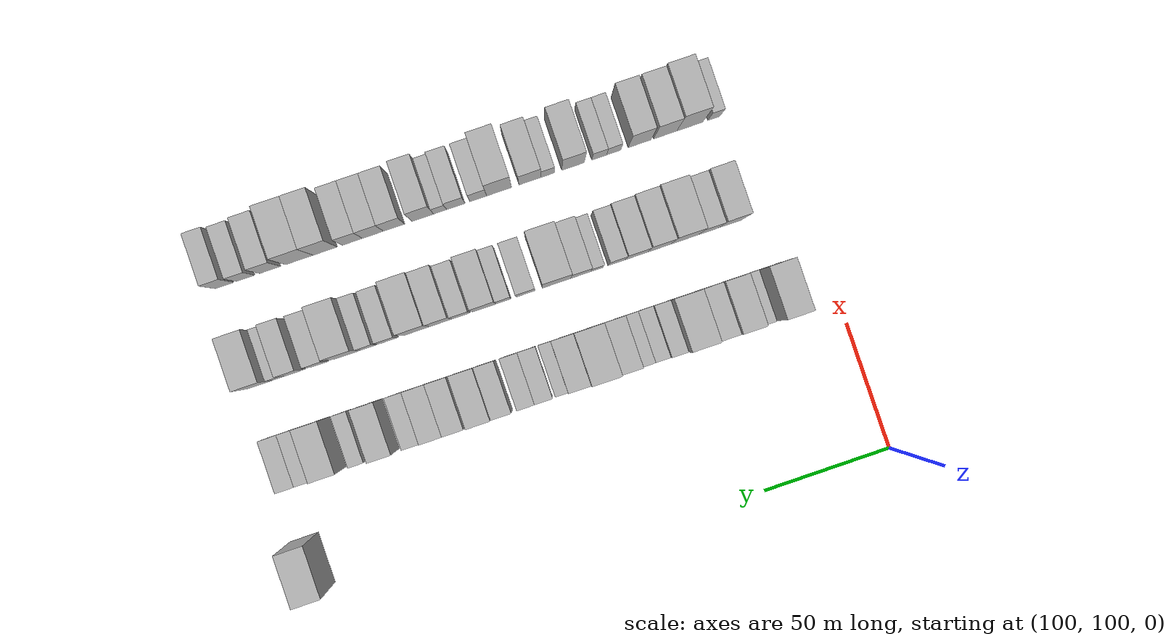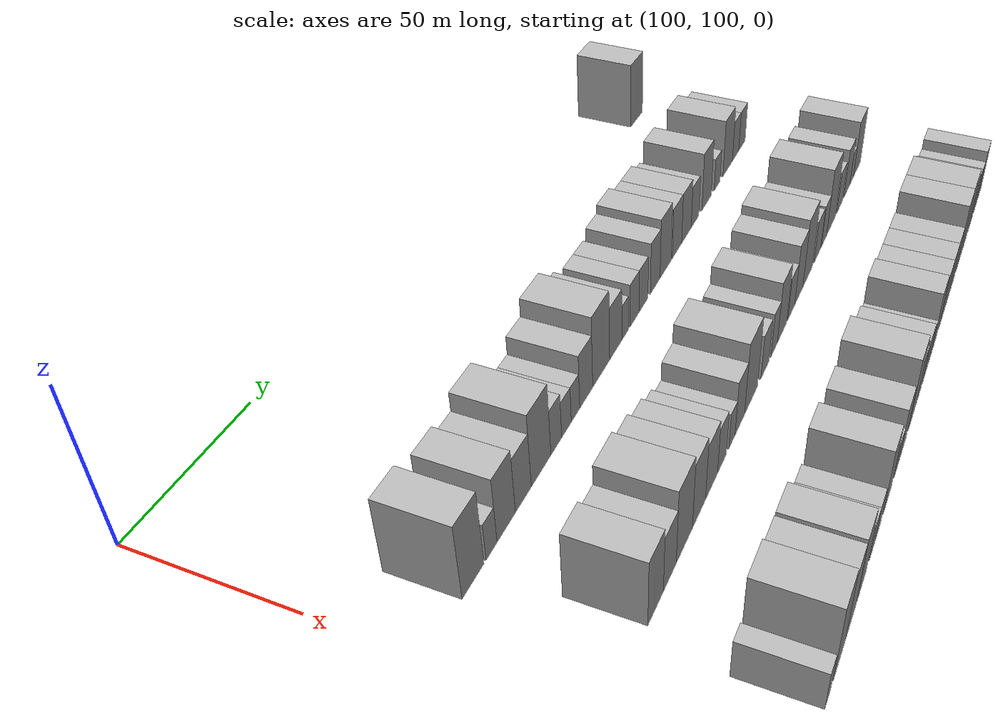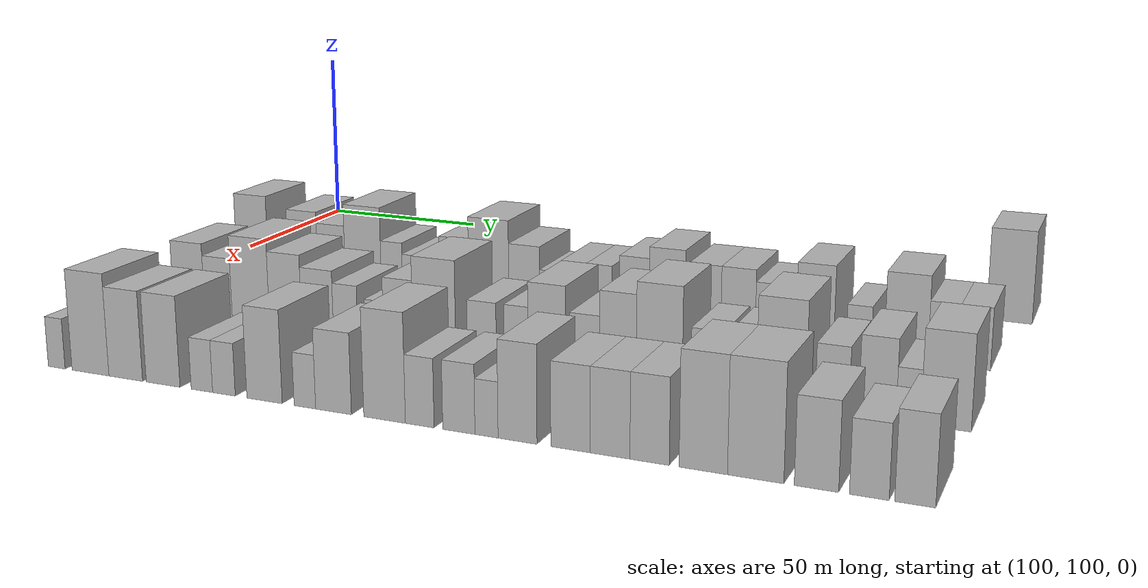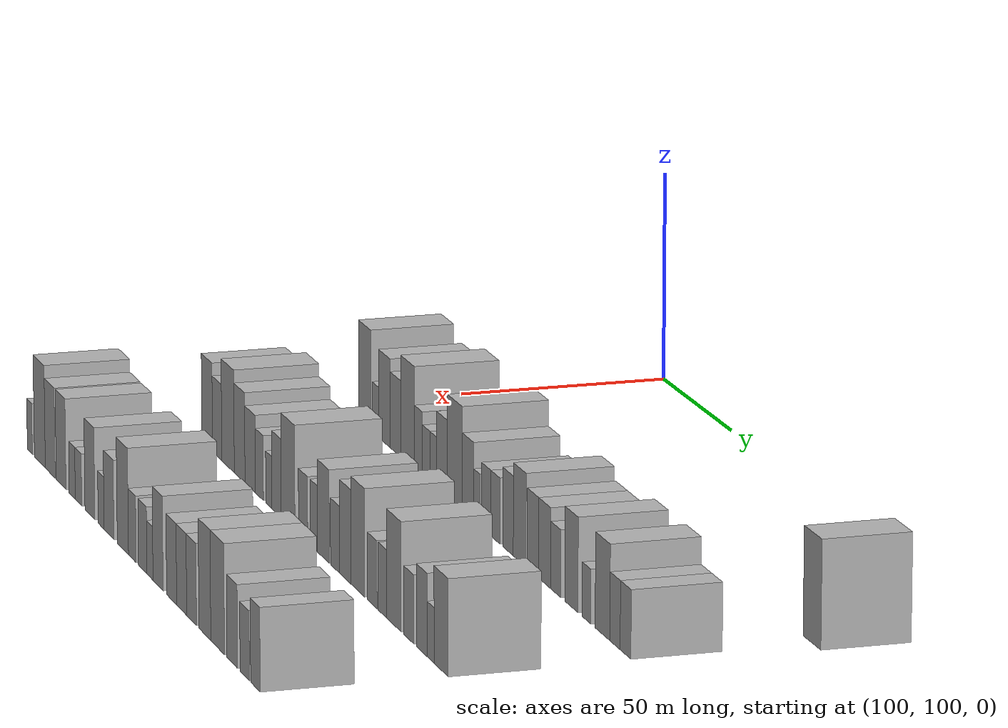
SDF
<sdf version="1.6">
 <world name="default">
  <model name="building_377">
   <static>1</static>
   <pose>130.0000 320.7247 0 0.000000 0.000000 0.000000</pose>
   <link name="link">
    <pose>0 0 12.00 0 0 0</pose>
    <collision name="collision"><geometry><box><size>20.0000 11.2108 24.0000</size></box></geometry></collision>
    <visual name="visual">
     <cast_shadows>0</cast_shadows>
     <geometry><box><size>20.0000 11.2108 24.0000</size></box></geometry>
     <material>
      <script>
       <uri>model://HANNAS_wall/materials/scripts</uri>
       <uri>model://HANNAS_wall/materials/textures</uri>
       <name>vrc/HANNAS_wall</name>
      </script>
     </material>
    </visual>
   </link>
  </model>
  <model name="building_493">
   <static>1</static>
   <pose>170.0000 121.3957 0 0.000000 0.000000 0.000000</pose>
   <link name="link">
    <pose>0 0 12.00 0 0 0</pose>
    <collision name="collision"><geometry><box><size>20.0000 10.3453 24.0000</size></box></geometry></collision>
    <visual name="visual">
     <cast_shadows>0</cast_shadows>
     <geometry><box><size>20.0000 10.3453 24.0000</size></box></geometry>
     <material>
      <script>
       <uri>model://HANNAS_wall/materials/scripts</uri>
       <uri>model://HANNAS_wall/materials/textures</uri>
       <name>vrc/HANNAS_wall</name>
      </script>
     </material>
    </visual>
   </link>
  </model>
  <model name="building_494">
   <static>1</static>
   <pose>170.0000 130.3082 0 0.000000 0.000000 0.000000</pose>
   <link name="link">
    <pose>0 0 6.00 0 0 0</pose>
    <collision name="collision"><geometry><box><size>20.0000 5.4796 12.0000</size></box></geometry></collision>
    <visual name="visual">
     <cast_shadows>0</cast_shadows>
     <geometry><box><size>20.0000 5.4796 12.0000</size></box></geometry>
     <material>
      <script>
       <uri>model://HANNAS_wall/materials/scripts</uri>
       <uri>model://HANNAS_wall/materials/textures</uri>
       <name>vrc/HANNAS_wall</name>
      </script>
     </material>
    </visual>
   </link>
  </model>
  <model name="building_495">
   <static>1</static>
   <pose>170.0000 137.7744 0 0.000000 0.000000 0.000000</pose>
   <link name="link">
    <pose>0 0 10.50 0 0 0</pose>
    <collision name="collision"><geometry><box><size>20.0000 9.4528 21.0000</size></box></geometry></collision>
    <visual name="visual">
     <cast_shadows>0</cast_shadows>
     <geometry><box><size>20.0000 9.4528 21.0000</size></box></geometry>
     <material>
      <script>
       <uri>model://HANNAS_wall/materials/scripts</uri>
       <uri>model://HANNAS_wall/materials/textures</uri>
       <name>vrc/HANNAS_wall</name>
      </script>
     </material>
    </visual>
   </link>
  </model>
  <model name="building_496">
   <static>1</static>
   <pose>170.0000 146.8106 0 0.000000 0.000000 0.000000</pose>
   <link name="link">
    <pose>0 0 9.00 0 0 0</pose>
    <collision name="collision"><geometry><box><size>20.0000 8.6198 18.0000</size></box></geometry></collision>
    <visual name="visual">
     <cast_shadows>0</cast_shadows>
     <geometry><box><size>20.0000 8.6198 18.0000</size></box></geometry>
     <material>
      <script>
       <uri>model://HANNAS_wall/materials/scripts</uri>
       <uri>model://HANNAS_wall/materials/textures</uri>
       <name>vrc/HANNAS_wall</name>
      </script>
     </material>
    </visual>
   </link>
  </model>
  <model name="building_497">
   <static>1</static>
   <pose>170.0000 156.6795 0 0.000000 0.000000 0.000000</pose>
   <link name="link">
    <pose>0 0 12.00 0 0 0</pose>
    <collision name="collision"><geometry><box><size>20.0000 11.1180 24.0000</size></box></geometry></collision>
    <visual name="visual">
     <cast_shadows>0</cast_shadows>
     <geometry><box><size>20.0000 11.1180 24.0000</size></box></geometry>
     <material>
      <script>
       <uri>model://HANNAS_wall/materials/scripts</uri>
       <uri>model://HANNAS_wall/materials/textures</uri>
       <name>vrc/HANNAS_wall</name>
      </script>
     </material>
    </visual>
   </link>
  </model>
  <model name="building_498">
   <static>1</static>
   <pose>170.0000 165.4487 0 0.000000 0.000000 0.000000</pose>
   <link name="link">
    <pose>0 0 7.50 0 0 0</pose>
    <collision name="collision"><geometry><box><size>20.0000 6.4203 15.0000</size></box></geometry></collision>
    <visual name="visual">
     <cast_shadows>0</cast_shadows>
     <geometry><box><size>20.0000 6.4203 15.0000</size></box></geometry>
     <material>
      <script>
       <uri>model://HANNAS_wall/materials/scripts</uri>
       <uri>model://HANNAS_wall/materials/textures</uri>
       <name>vrc/HANNAS_wall</name>
      </script>
     </material>
    </visual>
   </link>
  </model>
  <model name="building_499">
   <static>1</static>
   <pose>170.0000 171.6054 0 0.000000 0.000000 0.000000</pose>
   <link name="link">
    <pose>0 0 6.00 0 0 0</pose>
    <collision name="collision"><geometry><box><size>20.0000 5.8931 12.0000</size></box></geometry></collision>
    <visual name="visual">
     <cast_shadows>0</cast_shadows>
     <geometry><box><size>20.0000 5.8931 12.0000</size></box></geometry>
     <material>
      <script>
       <uri>model://HANNAS_wall/materials/scripts</uri>
       <uri>model://HANNAS_wall/materials/textures</uri>
       <name>vrc/HANNAS_wall</name>
      </script>
     </material>
    </visual>
   </link>
  </model>
  <model name="building_500">
   <static>1</static>
   <pose>170.0000 177.2197 0 0.000000 0.000000 0.000000</pose>
   <link name="link">
    <pose>0 0 6.00 0 0 0</pose>
    <collision name="collision"><geometry><box><size>20.0000 5.3356 12.0000</size></box></geometry></collision>
    <visual name="visual">
     <cast_shadows>0</cast_shadows>
     <geometry><box><size>20.0000 5.3356 12.0000</size></box></geometry>
     <material>
      <script>
       <uri>model://HANNAS_wall/materials/scripts</uri>
       <uri>model://HANNAS_wall/materials/textures</uri>
       <name>vrc/HANNAS_wall</name>
      </script>
     </material>
    </visual>
   </link>
  </model>
  <model name="building_501">
   <static>1</static>
   <pose>170.0000 184.1229 0 0.000000 0.000000 0.000000</pose>
   <link name="link">
    <pose>0 0 9.00 0 0 0</pose>
    <collision name="collision"><geometry><box><size>20.0000 8.4709 18.0000</size></box></geometry></collision>
    <visual name="visual">
     <cast_shadows>0</cast_shadows>
     <geometry><box><size>20.0000 8.4709 18.0000</size></box></geometry>
     <material>
      <script>
       <uri>model://HANNAS_wall/materials/scripts</uri>
       <uri>model://HANNAS_wall/materials/textures</uri>
       <name>vrc/HANNAS_wall</name>
      </script>
     </material>
    </visual>
   </link>
  </model>
  <model name="building_502">
   <static>1</static>
   <pose>170.0000 194.1179 0 0.000000 0.000000 0.000000</pose>
   <link name="link">
    <pose>0 0 12.00 0 0 0</pose>
    <collision name="collision"><geometry><box><size>20.0000 11.5191 24.0000</size></box></geometry></collision>
    <visual name="visual">
     <cast_shadows>0</cast_shadows>
     <geometry><box><size>20.0000 11.5191 24.0000</size></box></geometry>
     <material>
      <script>
       <uri>model://HANNAS_wall/materials/scripts</uri>
       <uri>model://HANNAS_wall/materials/textures</uri>
       <name>vrc/HANNAS_wall</name>
      </script>
     </material>
    </visual>
   </link>
  </model>
  <model name="building_503">
   <static>1</static>
   <pose>170.0000 204.2485 0 0.000000 0.000000 0.000000</pose>
   <link name="link">
    <pose>0 0 9.00 0 0 0</pose>
    <collision name="collision"><geometry><box><size>20.0000 8.7421 18.0000</size></box></geometry></collision>
    <visual name="visual">
     <cast_shadows>0</cast_shadows>
     <geometry><box><size>20.0000 8.7421 18.0000</size></box></geometry>
     <material>
      <script>
       <uri>model://HANNAS_wall/materials/scripts</uri>
       <uri>model://HANNAS_wall/materials/textures</uri>
       <name>vrc/HANNAS_wall</name>
      </script>
     </material>
    </visual>
   </link>
  </model>
  <model name="building_504">
   <static>1</static>
   <pose>170.0000 211.1005 0 0.000000 0.000000 0.000000</pose>
   <link name="link">
    <pose>0 0 6.00 0 0 0</pose>
    <collision name="collision"><geometry><box><size>20.0000 4.9620 12.0000</size></box></geometry></collision>
    <visual name="visual">
     <cast_shadows>0</cast_shadows>
     <geometry><box><size>20.0000 4.9620 12.0000</size></box></geometry>
     <material>
      <script>
       <uri>model://HANNAS_wall/materials/scripts</uri>
       <uri>model://HANNAS_wall/materials/textures</uri>
       <name>vrc/HANNAS_wall</name>
      </script>
     </material>
    </visual>
   </link>
  </model>
  <model name="building_505">
   <static>1</static>
   <pose>170.0000 218.0804 0 0.000000 0.000000 0.000000</pose>
   <link name="link">
    <pose>0 0 7.50 0 0 0</pose>
    <collision name="collision"><geometry><box><size>20.0000 6.9977 15.0000</size></box></geometry></collision>
    <visual name="visual">
     <cast_shadows>0</cast_shadows>
     <geometry><box><size>20.0000 6.9977 15.0000</size></box></geometry>
     <material>
      <script>
       <uri>model://HANNAS_wall/materials/scripts</uri>
       <uri>model://HANNAS_wall/materials/textures</uri>
       <name>vrc/HANNAS_wall</name>
      </script>
     </material>
    </visual>
   </link>
  </model>
  <model name="building_506">
   <static>1</static>
   <pose>170.0000 225.0211 0 0.000000 0.000000 0.000000</pose>
   <link name="link">
    <pose>0 0 7.50 0 0 0</pose>
    <collision name="collision"><geometry><box><size>20.0000 6.8839 15.0000</size></box></geometry></collision>
    <visual name="visual">
     <cast_shadows>0</cast_shadows>
     <geometry><box><size>20.0000 6.8839 15.0000</size></box></geometry>
     <material>
      <script>
       <uri>model://HANNAS_wall/materials/scripts</uri>
       <uri>model://HANNAS_wall/materials/textures</uri>
       <name>vrc/HANNAS_wall</name>
      </script>
     </material>
    </visual>
   </link>
  </model>
  <model name="building_507">
   <static>1</static>
   <pose>170.0000 234.3957 0 0.000000 0.000000 0.000000</pose>
   <link name="link">
    <pose>0 0 9.00 0 0 0</pose>
    <collision name="collision"><geometry><box><size>20.0000 7.8653 18.0000</size></box></geometry></collision>
    <visual name="visual">
     <cast_shadows>0</cast_shadows>
     <geometry><box><size>20.0000 7.8653 18.0000</size></box></geometry>
     <material>
      <script>
       <uri>model://HANNAS_wall/materials/scripts</uri>
       <uri>model://HANNAS_wall/materials/textures</uri>
       <name>vrc/HANNAS_wall</name>
      </script>
     </material>
    </visual>
   </link>
  </model>
  <model name="building_508">
   <static>1</static>
   <pose>170.0000 243.0102 0 0.000000 0.000000 0.000000</pose>
   <link name="link">
    <pose>0 0 10.50 0 0 0</pose>
    <collision name="collision"><geometry><box><size>20.0000 9.3636 21.0000</size></box></geometry></collision>
    <visual name="visual">
     <cast_shadows>0</cast_shadows>
     <geometry><box><size>20.0000 9.3636 21.0000</size></box></geometry>
     <material>
      <script>
       <uri>model://HANNAS_wall/materials/scripts</uri>
       <uri>model://HANNAS_wall/materials/textures</uri>
       <name>vrc/HANNAS_wall</name>
      </script>
     </material>
    </visual>
   </link>
  </model>
  <model name="building_509">
   <static>1</static>
   <pose>170.0000 252.8334 0 0.000000 0.000000 0.000000</pose>
   <link name="link">
    <pose>0 0 9.00 0 0 0</pose>
    <collision name="collision"><geometry><box><size>20.0000 8.2827 18.0000</size></box></geometry></collision>
    <visual name="visual">
     <cast_shadows>0</cast_shadows>
     <geometry><box><size>20.0000 8.2827 18.0000</size></box></geometry>
     <material>
      <script>
       <uri>model://HANNAS_wall/materials/scripts</uri>
       <uri>model://HANNAS_wall/materials/textures</uri>
       <name>vrc/HANNAS_wall</name>
      </script>
     </material>
    </visual>
   </link>
  </model>
  <model name="building_510">
   <static>1</static>
   <pose>170.0000 261.3285 0 0.000000 0.000000 0.000000</pose>
   <link name="link">
    <pose>0 0 9.00 0 0 0</pose>
    <collision name="collision"><geometry><box><size>20.0000 8.7075 18.0000</size></box></geometry></collision>
    <visual name="visual">
     <cast_shadows>0</cast_shadows>
     <geometry><box><size>20.0000 8.7075 18.0000</size></box></geometry>
     <material>
      <script>
       <uri>model://HANNAS_wall/materials/scripts</uri>
       <uri>model://HANNAS_wall/materials/textures</uri>
       <name>vrc/HANNAS_wall</name>
      </script>
     </material>
    </visual>
   </link>
  </model>
  <model name="building_511">
   <static>1</static>
   <pose>170.0000 269.2402 0 0.000000 0.000000 0.000000</pose>
   <link name="link">
    <pose>0 0 7.50 0 0 0</pose>
    <collision name="collision"><geometry><box><size>20.0000 7.1160 15.0000</size></box></geometry></collision>
    <visual name="visual">
     <cast_shadows>0</cast_shadows>
     <geometry><box><size>20.0000 7.1160 15.0000</size></box></geometry>
     <material>
      <script>
       <uri>model://HANNAS_wall/materials/scripts</uri>
       <uri>model://HANNAS_wall/materials/textures</uri>
       <name>vrc/HANNAS_wall</name>
      </script>
     </material>
    </visual>
   </link>
  </model>
  <model name="building_512">
   <static>1</static>
   <pose>170.0000 280.3870 0 0.000000 0.000000 0.000000</pose>
   <link name="link">
    <pose>0 0 10.50 0 0 0</pose>
    <collision name="collision"><geometry><box><size>20.0000 9.1775 21.0000</size></box></geometry></collision>
    <visual name="visual">
     <cast_shadows>0</cast_shadows>
     <geometry><box><size>20.0000 9.1775 21.0000</size></box></geometry>
     <material>
      <script>
       <uri>model://HANNAS_wall/materials/scripts</uri>
       <uri>model://HANNAS_wall/materials/textures</uri>
       <name>vrc/HANNAS_wall</name>
      </script>
     </material>
    </visual>
   </link>
  </model>
  <model name="building_513">
   <static>1</static>
   <pose>170.0000 290.9693 0 0.000000 0.000000 0.000000</pose>
   <link name="link">
    <pose>0 0 6.00 0 0 0</pose>
    <collision name="collision"><geometry><box><size>20.0000 5.9873 12.0000</size></box></geometry></collision>
    <visual name="visual">
     <cast_shadows>0</cast_shadows>
     <geometry><box><size>20.0000 5.9873 12.0000</size></box></geometry>
     <material>
      <script>
       <uri>model://HANNAS_wall/materials/scripts</uri>
       <uri>model://HANNAS_wall/materials/textures</uri>
       <name>vrc/HANNAS_wall</name>
      </script>
     </material>
    </visual>
   </link>
  </model>
  <model name="building_514">
   <static>1</static>
   <pose>170.0000 302.0450 0 0.000000 0.000000 0.000000</pose>
   <link name="link">
    <pose>0 0 10.50 0 0 0</pose>
    <collision name="collision"><geometry><box><size>20.0000 10.1641 21.0000</size></box></geometry></collision>
    <visual name="visual">
     <cast_shadows>0</cast_shadows>
     <geometry><box><size>20.0000 10.1641 21.0000</size></box></geometry>
     <material>
      <script>
       <uri>model://HANNAS_wall/materials/scripts</uri>
       <uri>model://HANNAS_wall/materials/textures</uri>
       <name>vrc/HANNAS_wall</name>
      </script>
     </material>
    </visual>
   </link>
  </model>
  <model name="building_515">
   <static>1</static>
   <pose>170.0000 310.6163 0 0.000000 0.000000 0.000000</pose>
   <link name="link">
    <pose>0 0 7.50 0 0 0</pose>
    <collision name="collision"><geometry><box><size>20.0000 6.9785 15.0000</size></box></geometry></collision>
    <visual name="visual">
     <cast_shadows>0</cast_shadows>
     <geometry><box><size>20.0000 6.9785 15.0000</size></box></geometry>
     <material>
      <script>
       <uri>model://HANNAS_wall/materials/scripts</uri>
       <uri>model://HANNAS_wall/materials/textures</uri>
       <name>vrc/HANNAS_wall</name>
      </script>
     </material>
    </visual>
   </link>
  </model>
  <model name="building_516">
   <static>1</static>
   <pose>170.0000 317.7378 0 0.000000 0.000000 0.000000</pose>
   <link name="link">
    <pose>0 0 7.50 0 0 0</pose>
    <collision name="collision"><geometry><box><size>20.0000 7.2645 15.0000</size></box></geometry></collision>
    <visual name="visual">
     <cast_shadows>0</cast_shadows>
     <geometry><box><size>20.0000 7.2645 15.0000</size></box></geometry>
     <material>
      <script>
       <uri>model://HANNAS_wall/materials/scripts</uri>
       <uri>model://HANNAS_wall/materials/textures</uri>
       <name>vrc/HANNAS_wall</name>
      </script>
     </material>
    </visual>
   </link>
  </model>
  <model name="building_630">
   <static>1</static>
   <pose>210.0000 129.7994 0 0.000000 0.000000 0.000000</pose>
   <link name="link">
    <pose>0 0 10.50 0 0 0</pose>
    <collision name="collision"><geometry><box><size>20.0000 9.4285 21.0000</size></box></geometry></collision>
    <visual name="visual">
     <cast_shadows>0</cast_shadows>
     <geometry><box><size>20.0000 9.4285 21.0000</size></box></geometry>
     <material>
      <script>
       <uri>model://HANNAS_wall/materials/scripts</uri>
       <uri>model://HANNAS_wall/materials/textures</uri>
       <name>vrc/HANNAS_wall</name>
      </script>
     </material>
    </visual>
   </link>
  </model>
  <model name="building_631">
   <static>1</static>
   <pose>210.0000 138.6026 0 0.000000 0.000000 0.000000</pose>
   <link name="link">
    <pose>0 0 9.00 0 0 0</pose>
    <collision name="collision"><geometry><box><size>20.0000 8.1780 18.0000</size></box></geometry></collision>
    <visual name="visual">
     <cast_shadows>0</cast_shadows>
     <geometry><box><size>20.0000 8.1780 18.0000</size></box></geometry>
     <material>
      <script>
       <uri>model://HANNAS_wall/materials/scripts</uri>
       <uri>model://HANNAS_wall/materials/textures</uri>
       <name>vrc/HANNAS_wall</name>
      </script>
     </material>
    </visual>
   </link>
  </model>
  <model name="building_632">
   <static>1</static>
   <pose>210.0000 148.1608 0 0.000000 0.000000 0.000000</pose>
   <link name="link">
    <pose>0 0 12.00 0 0 0</pose>
    <collision name="collision"><geometry><box><size>20.0000 10.9383 24.0000</size></box></geometry></collision>
    <visual name="visual">
     <cast_shadows>0</cast_shadows>
     <geometry><box><size>20.0000 10.9383 24.0000</size></box></geometry>
     <material>
      <script>
       <uri>model://HANNAS_wall/materials/scripts</uri>
       <uri>model://HANNAS_wall/materials/textures</uri>
       <name>vrc/HANNAS_wall</name>
      </script>
     </material>
    </visual>
   </link>
  </model>
  <model name="building_633">
   <static>1</static>
   <pose>210.0000 158.2588 0 0.000000 0.000000 0.000000</pose>
   <link name="link">
    <pose>0 0 10.50 0 0 0</pose>
    <collision name="collision"><geometry><box><size>20.0000 9.2578 21.0000</size></box></geometry></collision>
    <visual name="visual">
     <cast_shadows>0</cast_shadows>
     <geometry><box><size>20.0000 9.2578 21.0000</size></box></geometry>
     <material>
      <script>
       <uri>model://HANNAS_wall/materials/scripts</uri>
       <uri>model://HANNAS_wall/materials/textures</uri>
       <name>vrc/HANNAS_wall</name>
      </script>
     </material>
    </visual>
   </link>
  </model>
  <model name="building_634">
   <static>1</static>
   <pose>210.0000 167.3702 0 0.000000 0.000000 0.000000</pose>
   <link name="link">
    <pose>0 0 9.00 0 0 0</pose>
    <collision name="collision"><geometry><box><size>20.0000 8.9650 18.0000</size></box></geometry></collision>
    <visual name="visual">
     <cast_shadows>0</cast_shadows>
     <geometry><box><size>20.0000 8.9650 18.0000</size></box></geometry>
     <material>
      <script>
       <uri>model://HANNAS_wall/materials/scripts</uri>
       <uri>model://HANNAS_wall/materials/textures</uri>
       <name>vrc/HANNAS_wall</name>
      </script>
     </material>
    </visual>
   </link>
  </model>
  <model name="building_635">
   <static>1</static>
   <pose>210.0000 175.2345 0 0.000000 0.000000 0.000000</pose>
   <link name="link">
    <pose>0 0 7.50 0 0 0</pose>
    <collision name="collision"><geometry><box><size>20.0000 6.7636 15.0000</size></box></geometry></collision>
    <visual name="visual">
     <cast_shadows>0</cast_shadows>
     <geometry><box><size>20.0000 6.7636 15.0000</size></box></geometry>
     <material>
      <script>
       <uri>model://HANNAS_wall/materials/scripts</uri>
       <uri>model://HANNAS_wall/materials/textures</uri>
       <name>vrc/HANNAS_wall</name>
      </script>
     </material>
    </visual>
   </link>
  </model>
  <model name="building_636">
   <static>1</static>
   <pose>210.0000 183.1445 0 0.000000 0.000000 0.000000</pose>
   <link name="link">
    <pose>0 0 6.00 0 0 0</pose>
    <collision name="collision"><geometry><box><size>20.0000 5.0562 12.0000</size></box></geometry></collision>
    <visual name="visual">
     <cast_shadows>0</cast_shadows>
     <geometry><box><size>20.0000 5.0562 12.0000</size></box></geometry>
     <material>
      <script>
       <uri>model://HANNAS_wall/materials/scripts</uri>
       <uri>model://HANNAS_wall/materials/textures</uri>
       <name>vrc/HANNAS_wall</name>
      </script>
     </material>
    </visual>
   </link>
  </model>
  <model name="building_637">
   <static>1</static>
   <pose>210.0000 189.6236 0 0.000000 0.000000 0.000000</pose>
   <link name="link">
    <pose>0 0 9.00 0 0 0</pose>
    <collision name="collision"><geometry><box><size>20.0000 7.9020 18.0000</size></box></geometry></collision>
    <visual name="visual">
     <cast_shadows>0</cast_shadows>
     <geometry><box><size>20.0000 7.9020 18.0000</size></box></geometry>
     <material>
      <script>
       <uri>model://HANNAS_wall/materials/scripts</uri>
       <uri>model://HANNAS_wall/materials/textures</uri>
       <name>vrc/HANNAS_wall</name>
      </script>
     </material>
    </visual>
   </link>
  </model>
  <model name="building_638">
   <static>1</static>
   <pose>210.0000 199.2311 0 0.000000 0.000000 0.000000</pose>
   <link name="link">
    <pose>0 0 12.00 0 0 0</pose>
    <collision name="collision"><geometry><box><size>20.0000 11.3130 24.0000</size></box></geometry></collision>
    <visual name="visual">
     <cast_shadows>0</cast_shadows>
     <geometry><box><size>20.0000 11.3130 24.0000</size></box></geometry>
     <material>
      <script>
       <uri>model://HANNAS_wall/materials/scripts</uri>
       <uri>model://HANNAS_wall/materials/textures</uri>
       <name>vrc/HANNAS_wall</name>
      </script>
     </material>
    </visual>
   </link>
  </model>
  <model name="building_639">
   <static>1</static>
   <pose>210.0000 211.6267 0 0.000000 0.000000 0.000000</pose>
   <link name="link">
    <pose>0 0 7.50 0 0 0</pose>
    <collision name="collision"><geometry><box><size>20.0000 7.4781 15.0000</size></box></geometry></collision>
    <visual name="visual">
     <cast_shadows>0</cast_shadows>
     <geometry><box><size>20.0000 7.4781 15.0000</size></box></geometry>
     <material>
      <script>
       <uri>model://HANNAS_wall/materials/scripts</uri>
       <uri>model://HANNAS_wall/materials/textures</uri>
       <name>vrc/HANNAS_wall</name>
      </script>
     </material>
    </visual>
   </link>
  </model>
  <model name="building_640">
   <static>1</static>
   <pose>210.0000 220.3693 0 0.000000 0.000000 0.000000</pose>
   <link name="link">
    <pose>0 0 7.50 0 0 0</pose>
    <collision name="collision"><geometry><box><size>20.0000 6.0071 15.0000</size></box></geometry></collision>
    <visual name="visual">
     <cast_shadows>0</cast_shadows>
     <geometry><box><size>20.0000 6.0071 15.0000</size></box></geometry>
     <material>
      <script>
       <uri>model://HANNAS_wall/materials/scripts</uri>
       <uri>model://HANNAS_wall/materials/textures</uri>
       <name>vrc/HANNAS_wall</name>
      </script>
     </material>
    </visual>
   </link>
  </model>
  <model name="building_641">
   <static>1</static>
   <pose>210.0000 228.0496 0 0.000000 0.000000 0.000000</pose>
   <link name="link">
    <pose>0 0 10.50 0 0 0</pose>
    <collision name="collision"><geometry><box><size>20.0000 9.3536 21.0000</size></box></geometry></collision>
    <visual name="visual">
     <cast_shadows>0</cast_shadows>
     <geometry><box><size>20.0000 9.3536 21.0000</size></box></geometry>
     <material>
      <script>
       <uri>model://HANNAS_wall/materials/scripts</uri>
       <uri>model://HANNAS_wall/materials/textures</uri>
       <name>vrc/HANNAS_wall</name>
      </script>
     </material>
    </visual>
   </link>
  </model>
  <model name="building_642">
   <static>1</static>
   <pose>210.0000 237.3698 0 0.000000 0.000000 0.000000</pose>
   <link name="link">
    <pose>0 0 7.50 0 0 0</pose>
    <collision name="collision"><geometry><box><size>20.0000 7.2867 15.0000</size></box></geometry></collision>
    <visual name="visual">
     <cast_shadows>0</cast_shadows>
     <geometry><box><size>20.0000 7.2867 15.0000</size></box></geometry>
     <material>
      <script>
       <uri>model://HANNAS_wall/materials/scripts</uri>
       <uri>model://HANNAS_wall/materials/textures</uri>
       <name>vrc/HANNAS_wall</name>
      </script>
     </material>
    </visual>
   </link>
  </model>
  <model name="building_643">
   <static>1</static>
   <pose>210.0000 245.3890 0 0.000000 0.000000 0.000000</pose>
   <link name="link">
    <pose>0 0 10.50 0 0 0</pose>
    <collision name="collision"><geometry><box><size>20.0000 8.7519 21.0000</size></box></geometry></collision>
    <visual name="visual">
     <cast_shadows>0</cast_shadows>
     <geometry><box><size>20.0000 8.7519 21.0000</size></box></geometry>
     <material>
      <script>
       <uri>model://HANNAS_wall/materials/scripts</uri>
       <uri>model://HANNAS_wall/materials/textures</uri>
       <name>vrc/HANNAS_wall</name>
      </script>
     </material>
    </visual>
   </link>
  </model>
  <model name="building_644">
   <static>1</static>
   <pose>210.0000 255.1461 0 0.000000 0.000000 0.000000</pose>
   <link name="link">
    <pose>0 0 12.00 0 0 0</pose>
    <collision name="collision"><geometry><box><size>20.0000 10.7622 24.0000</size></box></geometry></collision>
    <visual name="visual">
     <cast_shadows>0</cast_shadows>
     <geometry><box><size>20.0000 10.7622 24.0000</size></box></geometry>
     <material>
      <script>
       <uri>model://HANNAS_wall/materials/scripts</uri>
       <uri>model://HANNAS_wall/materials/textures</uri>
       <name>vrc/HANNAS_wall</name>
      </script>
     </material>
    </visual>
   </link>
  </model>
  <model name="building_645">
   <static>1</static>
   <pose>210.0000 266.2246 0 0.000000 0.000000 0.000000</pose>
   <link name="link">
    <pose>0 0 7.50 0 0 0</pose>
    <collision name="collision"><geometry><box><size>20.0000 7.3948 15.0000</size></box></geometry></collision>
    <visual name="visual">
     <cast_shadows>0</cast_shadows>
     <geometry><box><size>20.0000 7.3948 15.0000</size></box></geometry>
     <material>
      <script>
       <uri>model://HANNAS_wall/materials/scripts</uri>
       <uri>model://HANNAS_wall/materials/textures</uri>
       <name>vrc/HANNAS_wall</name>
      </script>
     </material>
    </visual>
   </link>
  </model>
  <model name="building_646">
   <static>1</static>
   <pose>210.0000 274.1274 0 0.000000 0.000000 0.000000</pose>
   <link name="link">
    <pose>0 0 7.50 0 0 0</pose>
    <collision name="collision"><geometry><box><size>20.0000 6.4109 15.0000</size></box></geometry></collision>
    <visual name="visual">
     <cast_shadows>0</cast_shadows>
     <geometry><box><size>20.0000 6.4109 15.0000</size></box></geometry>
     <material>
      <script>
       <uri>model://HANNAS_wall/materials/scripts</uri>
       <uri>model://HANNAS_wall/materials/textures</uri>
       <name>vrc/HANNAS_wall</name>
      </script>
     </material>
    </visual>
   </link>
  </model>
  <model name="building_647">
   <static>1</static>
   <pose>210.0000 282.7959 0 0.000000 0.000000 0.000000</pose>
   <link name="link">
    <pose>0 0 12.00 0 0 0</pose>
    <collision name="collision"><geometry><box><size>20.0000 10.9262 24.0000</size></box></geometry></collision>
    <visual name="visual">
     <cast_shadows>0</cast_shadows>
     <geometry><box><size>20.0000 10.9262 24.0000</size></box></geometry>
     <material>
      <script>
       <uri>model://HANNAS_wall/materials/scripts</uri>
       <uri>model://HANNAS_wall/materials/textures</uri>
       <name>vrc/HANNAS_wall</name>
      </script>
     </material>
    </visual>
   </link>
  </model>
  <model name="building_648">
   <static>1</static>
   <pose>210.0000 293.9126 0 0.000000 0.000000 0.000000</pose>
   <link name="link">
    <pose>0 0 7.50 0 0 0</pose>
    <collision name="collision"><geometry><box><size>20.0000 7.3073 15.0000</size></box></geometry></collision>
    <visual name="visual">
     <cast_shadows>0</cast_shadows>
     <geometry><box><size>20.0000 7.3073 15.0000</size></box></geometry>
     <material>
      <script>
       <uri>model://HANNAS_wall/materials/scripts</uri>
       <uri>model://HANNAS_wall/materials/textures</uri>
       <name>vrc/HANNAS_wall</name>
      </script>
     </material>
    </visual>
   </link>
  </model>
  <model name="building_649">
   <static>1</static>
   <pose>210.0000 303.4955 0 0.000000 0.000000 0.000000</pose>
   <link name="link">
    <pose>0 0 9.00 0 0 0</pose>
    <collision name="collision"><geometry><box><size>20.0000 7.8585 18.0000</size></box></geometry></collision>
    <visual name="visual">
     <cast_shadows>0</cast_shadows>
     <geometry><box><size>20.0000 7.8585 18.0000</size></box></geometry>
     <material>
      <script>
       <uri>model://HANNAS_wall/materials/scripts</uri>
       <uri>model://HANNAS_wall/materials/textures</uri>
       <name>vrc/HANNAS_wall</name>
      </script>
     </material>
    </visual>
   </link>
  </model>
  <model name="building_650">
   <static>1</static>
   <pose>210.0000 309.9790 0 0.000000 0.000000 0.000000</pose>
   <link name="link">
    <pose>0 0 6.00 0 0 0</pose>
    <collision name="collision"><geometry><box><size>20.0000 5.1086 12.0000</size></box></geometry></collision>
    <visual name="visual">
     <cast_shadows>0</cast_shadows>
     <geometry><box><size>20.0000 5.1086 12.0000</size></box></geometry>
     <material>
      <script>
       <uri>model://HANNAS_wall/materials/scripts</uri>
       <uri>model://HANNAS_wall/materials/textures</uri>
       <name>vrc/HANNAS_wall</name>
      </script>
     </material>
    </visual>
   </link>
  </model>
  <model name="building_651">
   <static>1</static>
   <pose>210.0000 317.6714 0 0.000000 0.000000 0.000000</pose>
   <link name="link">
    <pose>0 0 10.50 0 0 0</pose>
    <collision name="collision"><geometry><box><size>20.0000 10.2762 21.0000</size></box></geometry></collision>
    <visual name="visual">
     <cast_shadows>0</cast_shadows>
     <geometry><box><size>20.0000 10.2762 21.0000</size></box></geometry>
     <material>
      <script>
       <uri>model://HANNAS_wall/materials/scripts</uri>
       <uri>model://HANNAS_wall/materials/textures</uri>
       <name>vrc/HANNAS_wall</name>
      </script>
     </material>
    </visual>
   </link>
  </model>
  <model name="building_777">
   <static>1</static>
   <pose>250.0000 122.4196 0 0.000000 0.000000 0.000000</pose>
   <link name="link">
    <pose>0 0 6.00 0 0 0</pose>
    <collision name="collision"><geometry><box><size>20.0000 4.8372 12.0000</size></box></geometry></collision>
    <visual name="visual">
     <cast_shadows>0</cast_shadows>
     <geometry><box><size>20.0000 4.8372 12.0000</size></box></geometry>
     <material>
      <script>
       <uri>model://HANNAS_wall/materials/scripts</uri>
       <uri>model://HANNAS_wall/materials/textures</uri>
       <name>vrc/HANNAS_wall</name>
      </script>
     </material>
    </visual>
   </link>
  </model>
  <model name="building_778">
   <static>1</static>
   <pose>250.0000 132.0619 0 0.000000 0.000000 0.000000</pose>
   <link name="link">
    <pose>0 0 12.00 0 0 0</pose>
    <collision name="collision"><geometry><box><size>20.0000 10.4474 24.0000</size></box></geometry></collision>
    <visual name="visual">
     <cast_shadows>0</cast_shadows>
     <geometry><box><size>20.0000 10.4474 24.0000</size></box></geometry>
     <material>
      <script>
       <uri>model://HANNAS_wall/materials/scripts</uri>
       <uri>model://HANNAS_wall/materials/textures</uri>
       <name>vrc/HANNAS_wall</name>
      </script>
     </material>
    </visual>
   </link>
  </model>
  <model name="building_779">
   <static>1</static>
   <pose>250.0000 141.9631 0 0.000000 0.000000 0.000000</pose>
   <link name="link">
    <pose>0 0 10.50 0 0 0</pose>
    <collision name="collision"><geometry><box><size>20.0000 9.3549 21.0000</size></box></geometry></collision>
    <visual name="visual">
     <cast_shadows>0</cast_shadows>
     <geometry><box><size>20.0000 9.3549 21.0000</size></box></geometry>
     <material>
      <script>
       <uri>model://HANNAS_wall/materials/scripts</uri>
       <uri>model://HANNAS_wall/materials/textures</uri>
       <name>vrc/HANNAS_wall</name>
      </script>
     </material>
    </visual>
   </link>
  </model>
  <model name="building_780">
   <static>1</static>
   <pose>250.0000 152.2207 0 0.000000 0.000000 0.000000</pose>
   <link name="link">
    <pose>0 0 10.50 0 0 0</pose>
    <collision name="collision"><geometry><box><size>20.0000 9.1603 21.0000</size></box></geometry></collision>
    <visual name="visual">
     <cast_shadows>0</cast_shadows>
     <geometry><box><size>20.0000 9.1603 21.0000</size></box></geometry>
     <material>
      <script>
       <uri>model://HANNAS_wall/materials/scripts</uri>
       <uri>model://HANNAS_wall/materials/textures</uri>
       <name>vrc/HANNAS_wall</name>
      </script>
     </material>
    </visual>
   </link>
  </model>
  <model name="building_781">
   <static>1</static>
   <pose>250.0000 162.6378 0 0.000000 0.000000 0.000000</pose>
   <link name="link">
    <pose>0 0 6.00 0 0 0</pose>
    <collision name="collision"><geometry><box><size>20.0000 5.6740 12.0000</size></box></geometry></collision>
    <visual name="visual">
     <cast_shadows>0</cast_shadows>
     <geometry><box><size>20.0000 5.6740 12.0000</size></box></geometry>
     <material>
      <script>
       <uri>model://HANNAS_wall/materials/scripts</uri>
       <uri>model://HANNAS_wall/materials/textures</uri>
       <name>vrc/HANNAS_wall</name>
      </script>
     </material>
    </visual>
   </link>
  </model>
  <model name="building_782">
   <static>1</static>
   <pose>250.0000 168.4422 0 0.000000 0.000000 0.000000</pose>
   <link name="link">
    <pose>0 0 6.00 0 0 0</pose>
    <collision name="collision"><geometry><box><size>20.0000 5.9346 12.0000</size></box></geometry></collision>
    <visual name="visual">
     <cast_shadows>0</cast_shadows>
     <geometry><box><size>20.0000 5.9346 12.0000</size></box></geometry>
     <material>
      <script>
       <uri>model://HANNAS_wall/materials/scripts</uri>
       <uri>model://HANNAS_wall/materials/textures</uri>
       <name>vrc/HANNAS_wall</name>
      </script>
     </material>
    </visual>
   </link>
  </model>
  <model name="building_783">
   <static>1</static>
   <pose>250.0000 178.9255 0 0.000000 0.000000 0.000000</pose>
   <link name="link">
    <pose>0 0 10.50 0 0 0</pose>
    <collision name="collision"><geometry><box><size>20.0000 9.0321 21.0000</size></box></geometry></collision>
    <visual name="visual">
     <cast_shadows>0</cast_shadows>
     <geometry><box><size>20.0000 9.0321 21.0000</size></box></geometry>
     <material>
      <script>
       <uri>model://HANNAS_wall/materials/scripts</uri>
       <uri>model://HANNAS_wall/materials/textures</uri>
       <name>vrc/HANNAS_wall</name>
      </script>
     </material>
    </visual>
   </link>
  </model>
  <model name="building_784">
   <static>1</static>
   <pose>250.0000 189.1307 0 0.000000 0.000000 0.000000</pose>
   <link name="link">
    <pose>0 0 6.00 0 0 0</pose>
    <collision name="collision"><geometry><box><size>20.0000 5.3784 12.0000</size></box></geometry></collision>
    <visual name="visual">
     <cast_shadows>0</cast_shadows>
     <geometry><box><size>20.0000 5.3784 12.0000</size></box></geometry>
     <material>
      <script>
       <uri>model://HANNAS_wall/materials/scripts</uri>
       <uri>model://HANNAS_wall/materials/textures</uri>
       <name>vrc/HANNAS_wall</name>
      </script>
     </material>
    </visual>
   </link>
  </model>
  <model name="building_785">
   <static>1</static>
   <pose>250.0000 196.2082 0 0.000000 0.000000 0.000000</pose>
   <link name="link">
    <pose>0 0 9.00 0 0 0</pose>
    <collision name="collision"><geometry><box><size>20.0000 8.7765 18.0000</size></box></geometry></collision>
    <visual name="visual">
     <cast_shadows>0</cast_shadows>
     <geometry><box><size>20.0000 8.7765 18.0000</size></box></geometry>
     <material>
      <script>
       <uri>model://HANNAS_wall/materials/scripts</uri>
       <uri>model://HANNAS_wall/materials/textures</uri>
       <name>vrc/HANNAS_wall</name>
      </script>
     </material>
    </visual>
   </link>
  </model>
  <model name="building_786">
   <static>1</static>
   <pose>250.0000 208.5578 0 0.000000 0.000000 0.000000</pose>
   <link name="link">
    <pose>0 0 12.00 0 0 0</pose>
    <collision name="collision"><geometry><box><size>20.0000 9.9227 24.0000</size></box></geometry></collision>
    <visual name="visual">
     <cast_shadows>0</cast_shadows>
     <geometry><box><size>20.0000 9.9227 24.0000</size></box></geometry>
     <material>
      <script>
       <uri>model://HANNAS_wall/materials/scripts</uri>
       <uri>model://HANNAS_wall/materials/textures</uri>
       <name>vrc/HANNAS_wall</name>
      </script>
     </material>
    </visual>
   </link>
  </model>
  <model name="building_787">
   <static>1</static>
   <pose>250.0000 216.8745 0 0.000000 0.000000 0.000000</pose>
   <link name="link">
    <pose>0 0 7.50 0 0 0</pose>
    <collision name="collision"><geometry><box><size>20.0000 6.7108 15.0000</size></box></geometry></collision>
    <visual name="visual">
     <cast_shadows>0</cast_shadows>
     <geometry><box><size>20.0000 6.7108 15.0000</size></box></geometry>
     <material>
      <script>
       <uri>model://HANNAS_wall/materials/scripts</uri>
       <uri>model://HANNAS_wall/materials/textures</uri>
       <name>vrc/HANNAS_wall</name>
      </script>
     </material>
    </visual>
   </link>
  </model>
  <model name="building_788">
   <static>1</static>
   <pose>250.0000 225.9093 0 0.000000 0.000000 0.000000</pose>
   <link name="link">
    <pose>0 0 7.50 0 0 0</pose>
    <collision name="collision"><geometry><box><size>20.0000 7.3588 15.0000</size></box></geometry></collision>
    <visual name="visual">
     <cast_shadows>0</cast_shadows>
     <geometry><box><size>20.0000 7.3588 15.0000</size></box></geometry>
     <material>
      <script>
       <uri>model://HANNAS_wall/materials/scripts</uri>
       <uri>model://HANNAS_wall/materials/textures</uri>
       <name>vrc/HANNAS_wall</name>
      </script>
     </material>
    </visual>
   </link>
  </model>
  <model name="building_789">
   <static>1</static>
   <pose>250.0000 232.1916 0 0.000000 0.000000 0.000000</pose>
   <link name="link">
    <pose>0 0 6.00 0 0 0</pose>
    <collision name="collision"><geometry><box><size>20.0000 5.2059 12.0000</size></box></geometry></collision>
    <visual name="visual">
     <cast_shadows>0</cast_shadows>
     <geometry><box><size>20.0000 5.2059 12.0000</size></box></geometry>
     <material>
      <script>
       <uri>model://HANNAS_wall/materials/scripts</uri>
       <uri>model://HANNAS_wall/materials/textures</uri>
       <name>vrc/HANNAS_wall</name>
      </script>
     </material>
    </visual>
   </link>
  </model>
  <model name="building_790">
   <static>1</static>
   <pose>250.0000 239.1086 0 0.000000 0.000000 0.000000</pose>
   <link name="link">
    <pose>0 0 10.50 0 0 0</pose>
    <collision name="collision"><geometry><box><size>20.0000 8.6280 21.0000</size></box></geometry></collision>
    <visual name="visual">
     <cast_shadows>0</cast_shadows>
     <geometry><box><size>20.0000 8.6280 21.0000</size></box></geometry>
     <material>
      <script>
       <uri>model://HANNAS_wall/materials/scripts</uri>
       <uri>model://HANNAS_wall/materials/textures</uri>
       <name>vrc/HANNAS_wall</name>
      </script>
     </material>
    </visual>
   </link>
  </model>
  <model name="building_791">
   <static>1</static>
   <pose>250.0000 250.6608 0 0.000000 0.000000 0.000000</pose>
   <link name="link">
    <pose>0 0 9.00 0 0 0</pose>
    <collision name="collision"><geometry><box><size>20.0000 8.4765 18.0000</size></box></geometry></collision>
    <visual name="visual">
     <cast_shadows>0</cast_shadows>
     <geometry><box><size>20.0000 8.4765 18.0000</size></box></geometry>
     <material>
      <script>
       <uri>model://HANNAS_wall/materials/scripts</uri>
       <uri>model://HANNAS_wall/materials/textures</uri>
       <name>vrc/HANNAS_wall</name>
      </script>
     </material>
    </visual>
   </link>
  </model>
  <model name="building_792">
   <static>1</static>
   <pose>250.0000 259.0807 0 0.000000 0.000000 0.000000</pose>
   <link name="link">
    <pose>0 0 9.00 0 0 0</pose>
    <collision name="collision"><geometry><box><size>20.0000 8.3632 18.0000</size></box></geometry></collision>
    <visual name="visual">
     <cast_shadows>0</cast_shadows>
     <geometry><box><size>20.0000 8.3632 18.0000</size></box></geometry>
     <material>
      <script>
       <uri>model://HANNAS_wall/materials/scripts</uri>
       <uri>model://HANNAS_wall/materials/textures</uri>
       <name>vrc/HANNAS_wall</name>
      </script>
     </material>
    </visual>
   </link>
  </model>
  <model name="building_793">
   <static>1</static>
   <pose>250.0000 267.3243 0 0.000000 0.000000 0.000000</pose>
   <link name="link">
    <pose>0 0 9.00 0 0 0</pose>
    <collision name="collision"><geometry><box><size>20.0000 8.1239 18.0000</size></box></geometry></collision>
    <visual name="visual">
     <cast_shadows>0</cast_shadows>
     <geometry><box><size>20.0000 8.1239 18.0000</size></box></geometry>
     <material>
      <script>
       <uri>model://HANNAS_wall/materials/scripts</uri>
       <uri>model://HANNAS_wall/materials/textures</uri>
       <name>vrc/HANNAS_wall</name>
      </script>
     </material>
    </visual>
   </link>
  </model>
  <model name="building_794">
   <static>1</static>
   <pose>250.0000 278.2399 0 0.000000 0.000000 0.000000</pose>
   <link name="link">
    <pose>0 0 12.00 0 0 0</pose>
    <collision name="collision"><geometry><box><size>20.0000 9.7074 24.0000</size></box></geometry></collision>
    <visual name="visual">
     <cast_shadows>0</cast_shadows>
     <geometry><box><size>20.0000 9.7074 24.0000</size></box></geometry>
     <material>
      <script>
       <uri>model://HANNAS_wall/materials/scripts</uri>
       <uri>model://HANNAS_wall/materials/textures</uri>
       <name>vrc/HANNAS_wall</name>
      </script>
     </material>
    </visual>
   </link>
  </model>
  <model name="building_795">
   <static>1</static>
   <pose>250.0000 288.6036 0 0.000000 0.000000 0.000000</pose>
   <link name="link">
    <pose>0 0 12.00 0 0 0</pose>
    <collision name="collision"><geometry><box><size>20.0000 11.0200 24.0000</size></box></geometry></collision>
    <visual name="visual">
     <cast_shadows>0</cast_shadows>
     <geometry><box><size>20.0000 11.0200 24.0000</size></box></geometry>
     <material>
      <script>
       <uri>model://HANNAS_wall/materials/scripts</uri>
       <uri>model://HANNAS_wall/materials/textures</uri>
       <name>vrc/HANNAS_wall</name>
      </script>
     </material>
    </visual>
   </link>
  </model>
  <model name="building_796">
   <static>1</static>
   <pose>250.0000 300.3178 0 0.000000 0.000000 0.000000</pose>
   <link name="link">
    <pose>0 0 9.00 0 0 0</pose>
    <collision name="collision"><geometry><box><size>20.0000 8.4086 18.0000</size></box></geometry></collision>
    <visual name="visual">
     <cast_shadows>0</cast_shadows>
     <geometry><box><size>20.0000 8.4086 18.0000</size></box></geometry>
     <material>
      <script>
       <uri>model://HANNAS_wall/materials/scripts</uri>
       <uri>model://HANNAS_wall/materials/textures</uri>
       <name>vrc/HANNAS_wall</name>
      </script>
     </material>
    </visual>
   </link>
  </model>
  <model name="building_797">
   <static>1</static>
   <pose>250.0000 310.1925 0 0.000000 0.000000 0.000000</pose>
   <link name="link">
    <pose>0 0 7.50 0 0 0</pose>
    <collision name="collision"><geometry><box><size>20.0000 7.3408 15.0000</size></box></geometry></collision>
    <visual name="visual">
     <cast_shadows>0</cast_shadows>
     <geometry><box><size>20.0000 7.3408 15.0000</size></box></geometry>
     <material>
      <script>
       <uri>model://HANNAS_wall/materials/scripts</uri>
       <uri>model://HANNAS_wall/materials/textures</uri>
       <name>vrc/HANNAS_wall</name>
      </script>
     </material>
    </visual>
   </link>
  </model>
  <model name="building_798">
   <static>1</static>
   <pose>250.0000 318.5673 0 0.000000 0.000000 0.000000</pose>
   <link name="link">
    <pose>0 0 9.00 0 0 0</pose>
    <collision name="collision"><geometry><box><size>20.0000 7.4088 18.0000</size></box></geometry></collision>
    <visual name="visual">
     <cast_shadows>0</cast_shadows>
     <geometry><box><size>20.0000 7.4088 18.0000</size></box></geometry>
     <material>
      <script>
       <uri>model://HANNAS_wall/materials/scripts</uri>
       <uri>model://HANNAS_wall/materials/textures</uri>
       <name>vrc/HANNAS_wall</name>
      </script>
     </material>
    </visual>
   </link>
  </model>
 </world>
</sdf>
